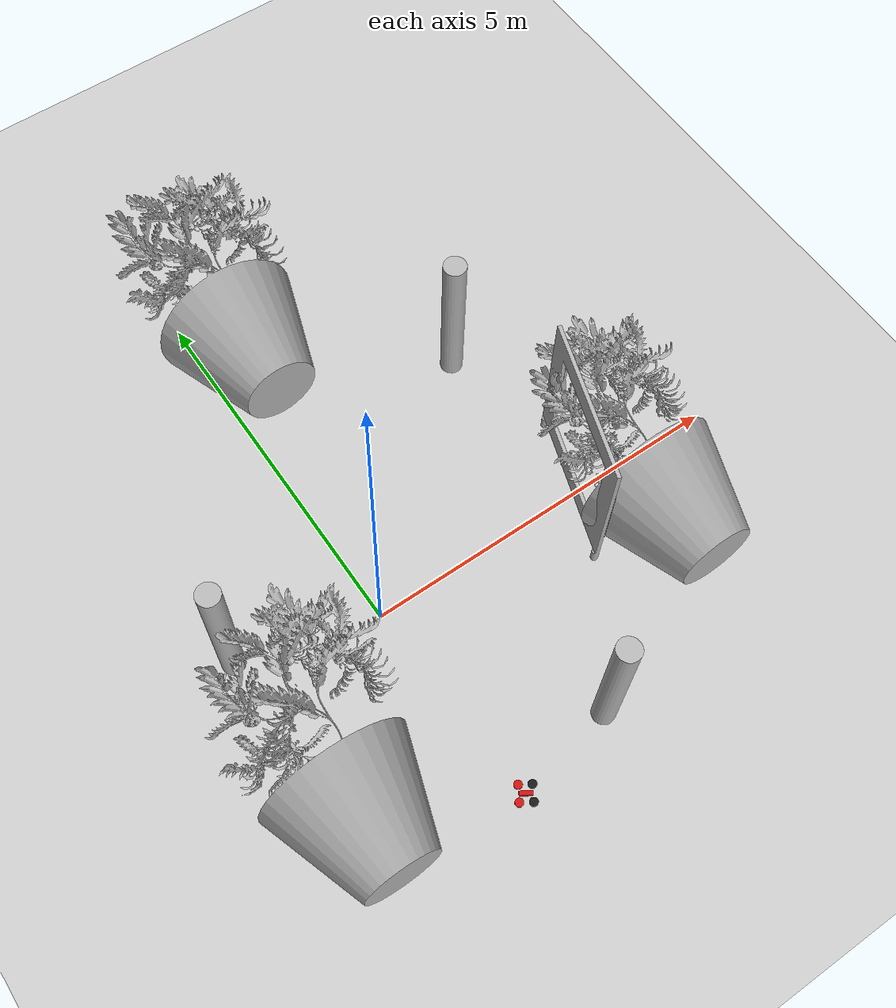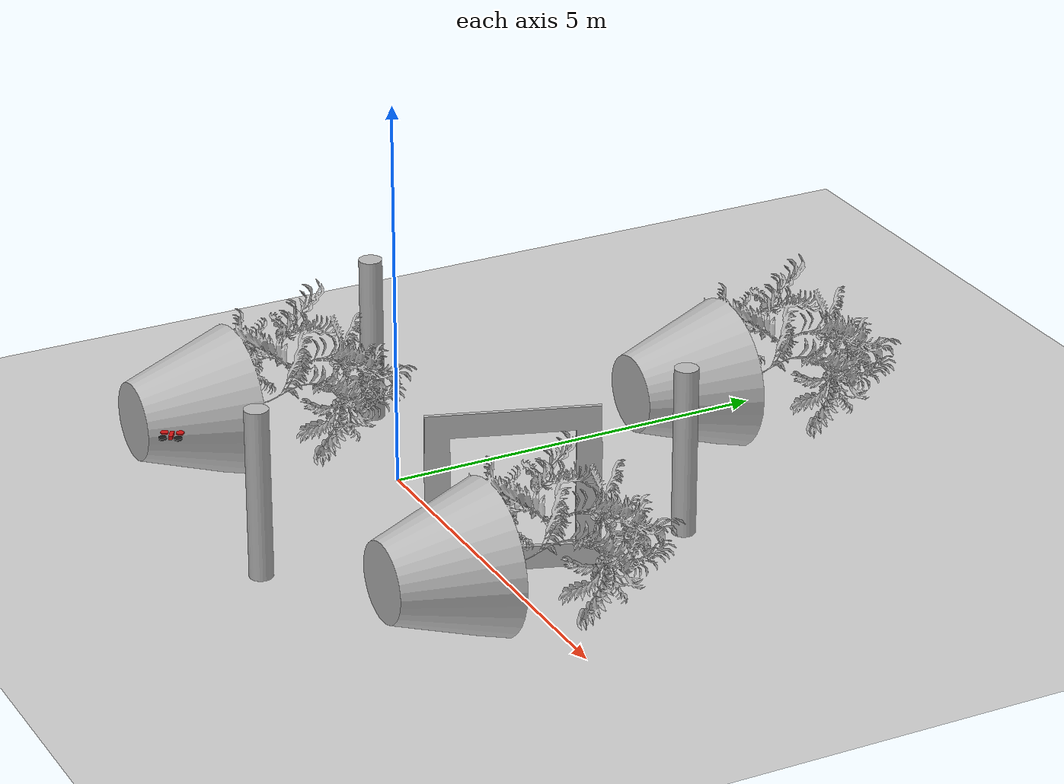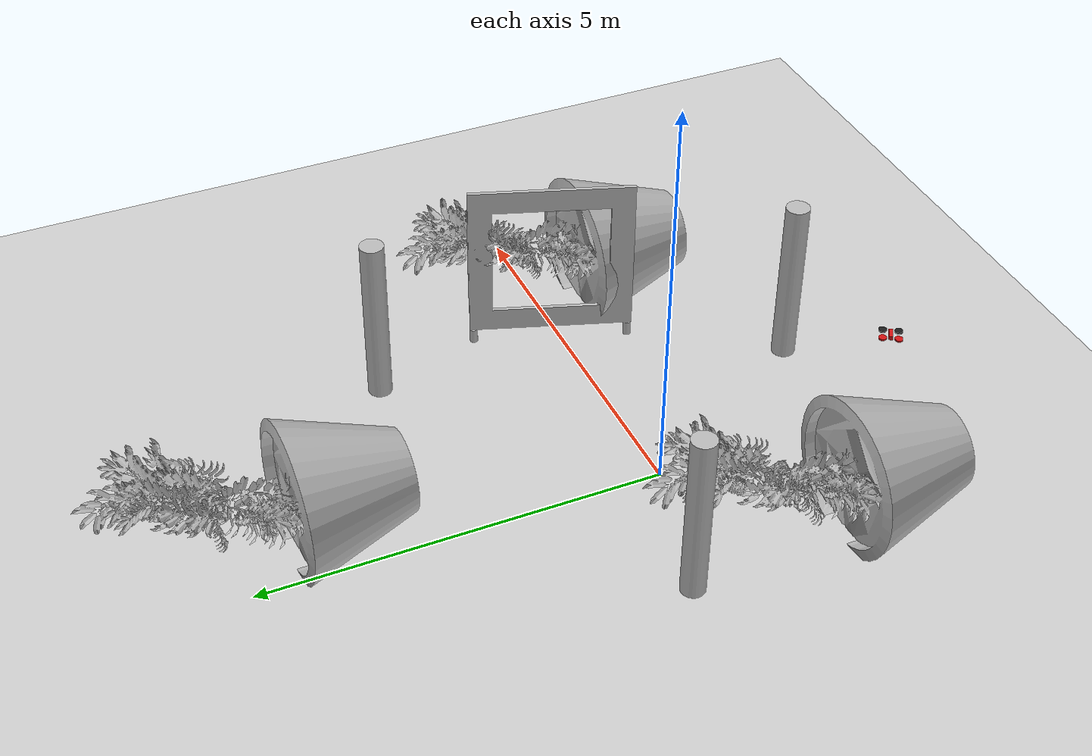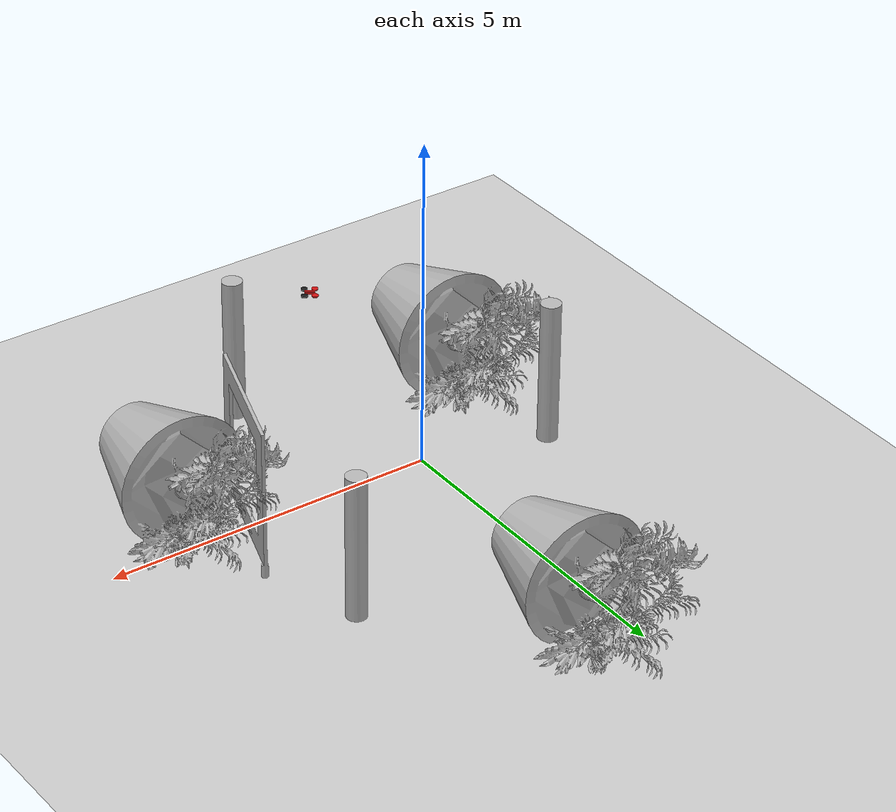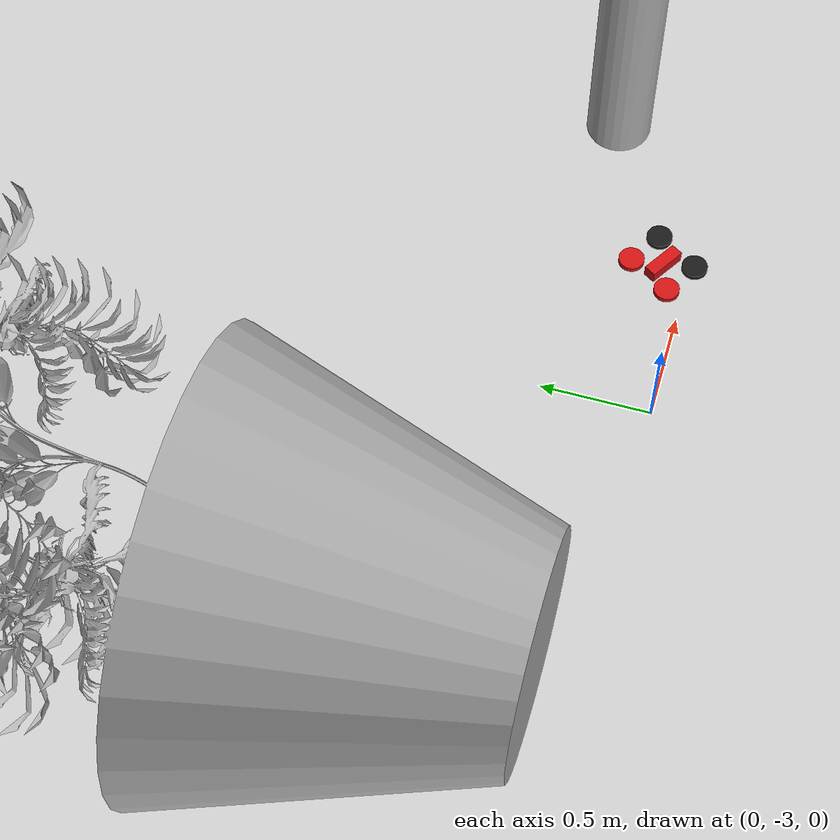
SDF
<sdf version="1.7">
 <world name="cyberzoo">
  <physics type="ode">
   <max_step_size>0.001</max_step_size>
   <real_time_update_rate>0</real_time_update_rate>
   <real_time_factor>1</real_time_factor>
  </physics>
  <scene>
   <ambient>0.9 0.9 0.9 1</ambient>
   <background>0.7 0.7 0.7 1</background>
   <origin_visual>0</origin_visual>
   <shadows>0</shadows>
  </scene>
  <spherical_coordinates>
   <surface_model>EARTH_WGS84</surface_model>
   <latitude_deg>51.9906</latitude_deg>
   <longitude_deg>4.37679</longitude_deg>
   <elevation>45.11</elevation>
   <heading_deg>180</heading_deg>
  </spherical_coordinates>
  <model name="ground_plane">
   <static>1</static>
   <link name="link">
    <collision name="collision">
     <geometry><plane><normal>0 0 1</normal><size>100 100</size></plane></geometry>
     <surface>
      <contact><collide_bitmask>65535</collide_bitmask></contact>
      <friction><ode><mu>100</mu><mu2>50</mu2></ode></friction>
     </surface>
    </collision>
    <visual name="visual">
     <cast_shadows>0</cast_shadows>
     <geometry><plane><normal>0 0 1</normal><size>100 100</size></plane></geometry>
     <material>
      <script><uri>file://media/materials/scripts/gazebo.material</uri><name>Gazebo/Grey</name></script>
     </material>
    </visual>
   </link>
   <pose>0 0 -0.02 0 -0 0.454</pose>
  </model>
  <model name="orange_pole2">
   <static>1</static>
   <pose>-1.8 0.5 0 0 -0 0</pose>
   <link name="orange_pole">
    <visual name="pole"><geometry><mesh><uri>model://orange_pole/orange_pole.dae</uri></mesh></geometry></visual>
    <collision name="pole_collision">
     <geometry><mesh><uri>model://orange_pole/orange_pole.dae</uri></mesh></geometry>
    </collision>
   </link>
  </model>
  <model name="orange_pole4">
   <static>1</static>
   <pose>1.5 -2.5 0 0 -0 0</pose>
   <link name="orange_pole">
    <visual name="pole"><geometry><mesh><uri>model://orange_pole/orange_pole.dae</uri></mesh></geometry></visual>
    <collision name="pole_collision">
     <geometry><mesh><uri>model://orange_pole/orange_pole.dae</uri></mesh></geometry>
    </collision>
   </link>
  </model>
  <model name="orange_pole5">
   <static>1</static>
   <pose>2.8 2.5 0 0 -0 0</pose>
   <link name="orange_pole">
    <visual name="pole"><geometry><mesh><uri>model://orange_pole/orange_pole.dae</uri></mesh></geometry></visual>
    <collision name="pole_collision">
     <geometry><mesh><uri>model://orange_pole/orange_pole.dae</uri></mesh></geometry>
    </collision>
   </link>
  </model>
  <gravity>0 0 -9.8</gravity>
  <magnetic_field>6e-06 2.3e-05 -4.2e-05</magnetic_field>
  <atmosphere type="adiabatic"/>
  <model name="bebop">
   <pose>-0.082047 -2.94917 1.25325 -0.000319 -0.000114 2.58323</pose>
   <link name="chassis">
    <velocity_decay><linear>0.001</linear></velocity_decay>
    <inertial>
     <mass>0.536</mass>
     <inertia>
      <ixx>0.000906</ixx>
      <iyy>0.001242</iyy>
      <izz>0.002054</izz>
      <ixy>0</ixy>
      <ixz>1.4e-05</ixz>
      <iyz>0</iyz>
     </inertia>
    </inertial>
    <collision name="collision"><geometry><box><size>0.4 0.4 0.05</size></box></geometry></collision>
    <visual name="visual">
     <geometry><box><size>0.15 0.05 0.05</size></box></geometry>
     <material><diffuse>0.82 0.07 0.07 1</diffuse><ambient>0.82 0.07 0.07 1</ambient></material>
    </visual>
    <sensor name="contactsensor" type="contact">
     <contact><collision>collision</collision><topic>__default_topic__</topic></contact>
    </sensor>
   </link>
   <link name="nw_motor">
    <pose>0.077 0.095 0 0 -0 0</pose>
    <inertial>
     <mass>0.01</mass>
     <inertia><ixx>0.0001</ixx><iyy>0.0001</iyy><izz>0.0001</izz><ixy>0</ixy><iyz>0</iyz><ixz>0</ixz></inertia>
    </inertial>
    <visual name="visual">
     <geometry><cylinder><radius>0.05</radius><length>0.02</length></cylinder></geometry>
     <material><diffuse>0.82 0.07 0.07 1</diffuse><ambient>0.82 0.07 0.07 1</ambient></material>
    </visual>
   </link>
   <joint name="nw_motor_joint" type="fixed"><parent>chassis</parent><child>nw_motor</child></joint>
   <link name="se_motor">
    <pose>-0.077 -0.095 0 0 -0 0</pose>
    <inertial>
     <mass>0.01</mass>
     <inertia><ixx>0.0001</ixx><iyy>0.0001</iyy><izz>0.0001</izz><ixy>0</ixy><iyz>0</iyz><ixz>0</ixz></inertia>
    </inertial>
    <visual name="visual">
     <geometry><cylinder><radius>0.05</radius><length>0.02</length></cylinder></geometry>
     <material><diffuse>0.1 0.1 0.1 1</diffuse><ambient>0.1 0.1 0.1 1</ambient></material>
    </visual>
   </link>
   <joint name="se_motor_joint" type="fixed"><parent>chassis</parent><child>se_motor</child></joint>
   <link name="ne_motor">
    <pose>0.077 -0.095 0 0 -0 0</pose>
    <inertial>
     <mass>0.01</mass>
     <inertia><ixx>0.0001</ixx><iyy>0.0001</iyy><izz>0.0001</izz><ixy>0</ixy><iyz>0</iyz><ixz>0</ixz></inertia>
    </inertial>
    <visual name="visual">
     <geometry><cylinder><radius>0.05</radius><length>0.02</length></cylinder></geometry>
     <material><diffuse>0.82 0.07 0.07 1</diffuse><ambient>0.82 0.07 0.07 1</ambient></material>
    </visual>
   </link>
   <joint name="ne_motor_joint" type="fixed"><parent>chassis</parent><child>ne_motor</child></joint>
   <link name="sw_motor">
    <pose>-0.077 0.095 0 0 -0 0</pose>
    <inertial>
     <mass>0.01</mass>
     <inertia><ixx>0.0001</ixx><iyy>0.0001</iyy><izz>0.0001</izz><ixy>0</ixy><iyz>0</iyz><ixz>0</ixz></inertia>
    </inertial>
    <visual name="visual">
     <geometry><cylinder><radius>0.05</radius><length>0.02</length></cylinder></geometry>
     <material><diffuse>0.1 0.1 0.1 1</diffuse><ambient>0.1 0.1 0.1 1</ambient></material>
    </visual>
   </link>
   <joint name="sw_motor_joint" type="fixed"><parent>chassis</parent><child>sw_motor</child></joint>
   <link name="front_camera">
    <pose>0.15 0 0 -1.57 0.33 0</pose>
    <inertial>
     <mass>0.001</mass>
     <inertia><ixx>0.0001</ixx><iyy>0.0001</iyy><izz>0.0001</izz><ixy>0</ixy><iyz>0</iyz><ixz>0</ixz></inertia>
    </inertial>
    <sensor name="mt9f002" type="wideanglecamera">
     <update_rate>15</update_rate>
     <camera>
      <image><width>1152</width><height>822</height><format>R8G8B8</format></image>
      <horizontal_fov>3.7</horizontal_fov>
      <lens>
       <type>equisolid_angle</type>
       <scale_to_hfov>1</scale_to_hfov>
       <cutoff_angle>1.8</cutoff_angle>
       <env_texture_size>512</env_texture_size>
      </lens>
      <clip><near>0.01</near><far>300</far></clip>
      <noise><type>gaussian</type><mean>0</mean><stddev>0.007</stddev></noise>
     </camera>
    </sensor>
   </link>
   <joint name="front_camera_joint" type="fixed"><parent>chassis</parent><child>front_camera</child></joint>
   <link name="bottom_camera">
    <pose>0 0 0 0 1.57 0</pose>
    <inertial>
     <mass>0.001</mass>
     <inertia><ixx>0.0001</ixx><iyy>0.0001</iyy><izz>0.0001</izz><ixy>0</ixy><iyz>0</iyz><ixz>0</ixz></inertia>
    </inertial>
    <sensor name="mt9v117" type="camera">
     <update_rate>90</update_rate>
     <camera>
      <horizontal_fov>0.7175</horizontal_fov>
      <image><width>240</width><height>240</height><format>R8G8B8</format></image>
      <clip><near>0.02</near><far>300</far></clip>
      <noise><type>gaussian</type><mean>0</mean><stddev>0.007</stddev></noise>
     </camera>
    </sensor>
   </link>
   <joint name="bottom_camera_joint" type="fixed"><parent>chassis</parent><child>bottom_camera</child></joint>
  </model>
  <audio><device>default</device></audio>
  <model name="plant">
   <static>1</static>
   <pose>-0.080691 3.00897 0 0 -0 0</pose>
   <link name="plant">
    <visual name="plant">
     <geometry><mesh><uri>model://plant/plant.dae</uri><scale>0.5 0.5 0.5</scale></mesh></geometry>
    </visual>
    <collision name="plant">
     <geometry><mesh><uri>model://plant/plant.dae</uri><scale>0.5 0.5 0.5</scale></mesh></geometry>
    </collision>
   </link>
  </model>
  <model name="gate">
   <static>1</static>
   <pose>2.99264 0.094725 1.2 -1.5708 5e-06 1.24649</pose>
   <link name="gate">
    <visual name="gate">
     <geometry><mesh><uri>model://gate/gate.dae</uri><scale>0.00992 0.00992 0.00992</scale></mesh></geometry>
    </visual>
    <collision name="gate_collision">
     <geometry><mesh><uri>model://gate/gate.dae</uri><scale>0.00992 0.00992 0.00992</scale></mesh></geometry>
    </collision>
   </link>
  </model>
  <model name="plant_0">
   <static>1</static>
   <pose>2.98451 -1.88403 0 0 -0 0</pose>
   <link name="plant">
    <visual name="plant">
     <geometry><mesh><uri>model://plant/plant.dae</uri><scale>0.5 0.5 0.5</scale></mesh></geometry>
    </visual>
    <collision name="plant">
     <geometry><mesh><uri>model://plant/plant.dae</uri><scale>0.5 0.5 0.5</scale></mesh></geometry>
    </collision>
   </link>
  </model>
  <model name="plant_1">
   <static>1</static>
   <pose>-2.18179 -2.85957 0 0 -0 0</pose>
   <link name="plant">
    <visual name="plant">
     <geometry><mesh><uri>model://plant/plant.dae</uri><scale>0.5 0.5 0.5</scale></mesh></geometry>
    </visual>
    <collision name="plant">
     <geometry><mesh><uri>model://plant/plant.dae</uri><scale>0.5 0.5 0.5</scale></mesh></geometry>
    </collision>
   </link>
  </model>
 </world>
</sdf>
